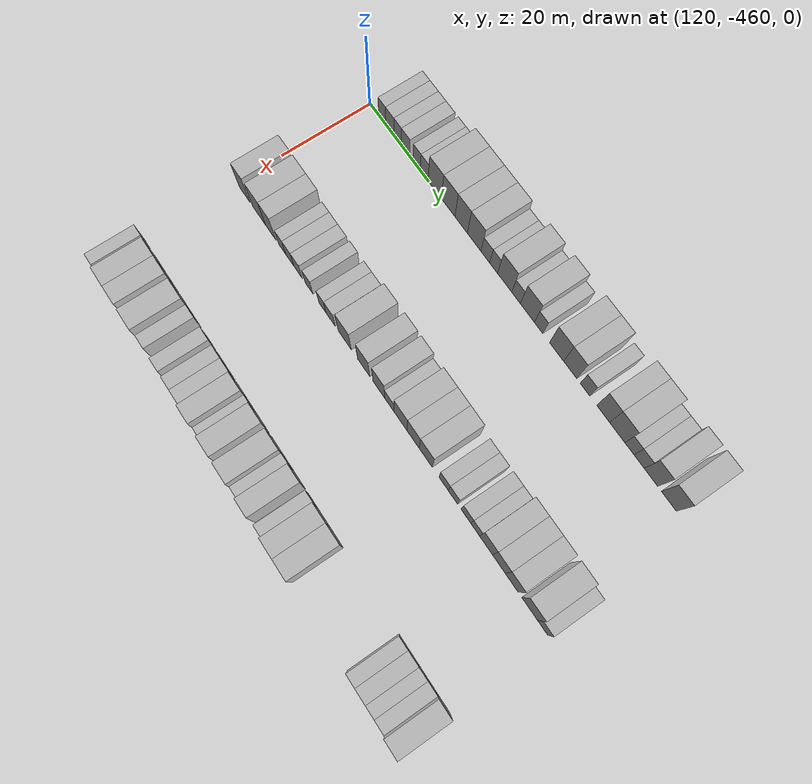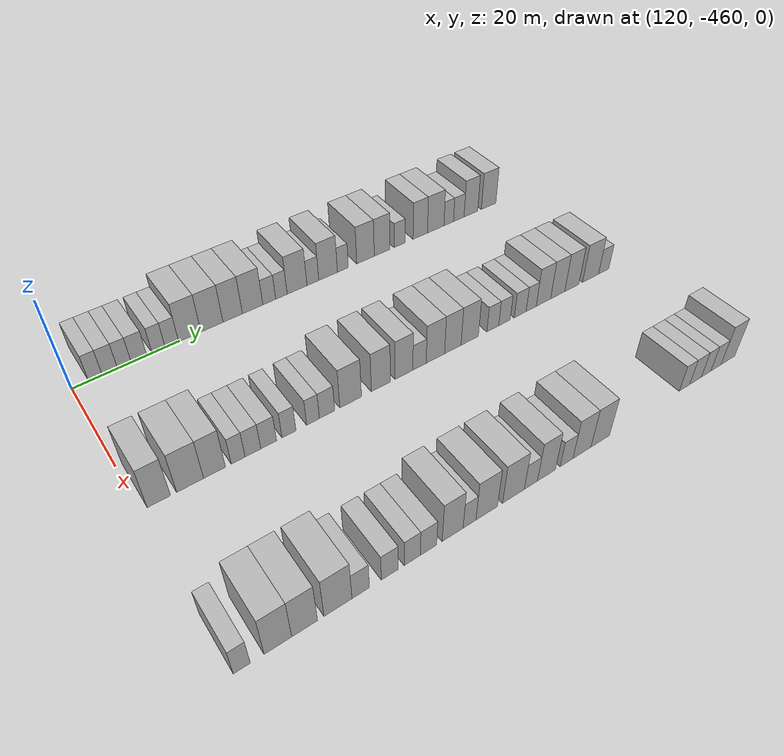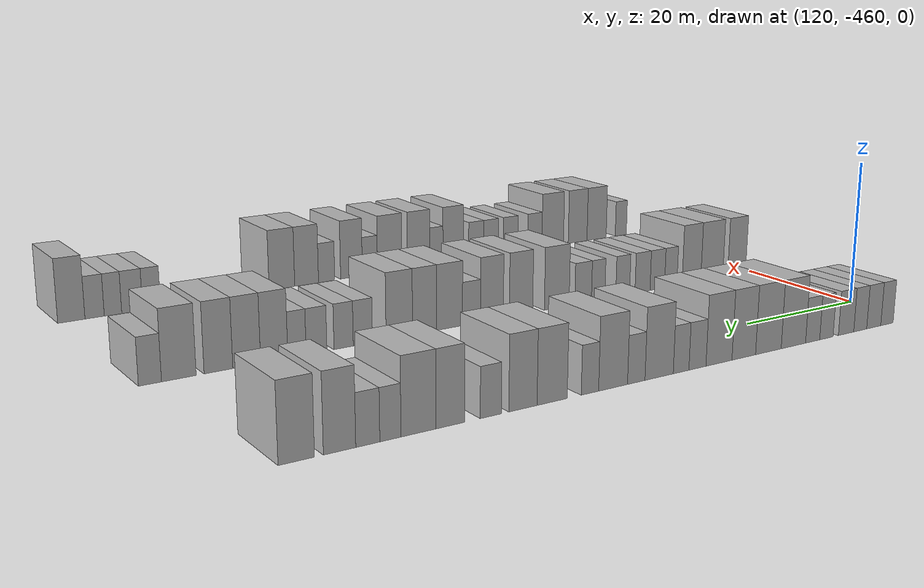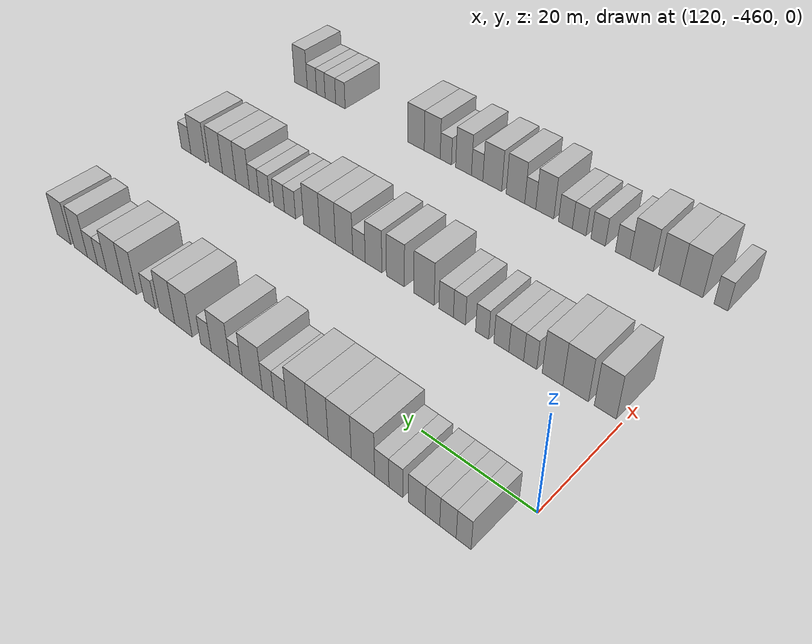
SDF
<sdf version="1.6">
 <world name="default">
  <model name="building_701">
   <static>1</static>
   <pose>115.0000 -455.7994 0 0.000000 0.000000 0.000000</pose>
   <link name="link">
    <pose>0 0 3.00 0 0 0</pose>
    <collision name="collision"><geometry><box><size>10.0000 2.4481 6.0000</size></box></geometry></collision>
    <visual name="visual">
     <cast_shadows>0</cast_shadows>
     <geometry><box><size>10.0000 2.4481 6.0000</size></box></geometry>
     <material>
      <script>
       <uri>model://HANNAS_wall/materials/scripts</uri>
       <uri>model://HANNAS_wall/materials/textures</uri>
       <name>vrc/HANNAS_wall</name>
      </script>
     </material>
    </visual>
   </link>
  </model>
  <model name="building_702">
   <static>1</static>
   <pose>115.0000 -453.1997 0 0.000000 0.000000 0.000000</pose>
   <link name="link">
    <pose>0 0 3.00 0 0 0</pose>
    <collision name="collision"><geometry><box><size>10.0000 2.7514 6.0000</size></box></geometry></collision>
    <visual name="visual">
     <cast_shadows>0</cast_shadows>
     <geometry><box><size>10.0000 2.7514 6.0000</size></box></geometry>
     <material>
      <script>
       <uri>model://HANNAS_wall/materials/scripts</uri>
       <uri>model://HANNAS_wall/materials/textures</uri>
       <name>vrc/HANNAS_wall</name>
      </script>
     </material>
    </visual>
   </link>
  </model>
  <model name="building_703">
   <static>1</static>
   <pose>115.0000 -450.5756 0 0.000000 0.000000 0.000000</pose>
   <link name="link">
    <pose>0 0 3.00 0 0 0</pose>
    <collision name="collision"><geometry><box><size>10.0000 2.4968 6.0000</size></box></geometry></collision>
    <visual name="visual">
     <cast_shadows>0</cast_shadows>
     <geometry><box><size>10.0000 2.4968 6.0000</size></box></geometry>
     <material>
      <script>
       <uri>model://HANNAS_wall/materials/scripts</uri>
       <uri>model://HANNAS_wall/materials/textures</uri>
       <name>vrc/HANNAS_wall</name>
      </script>
     </material>
    </visual>
   </link>
  </model>
  <model name="building_704">
   <static>1</static>
   <pose>115.0000 -447.8715 0 0.000000 0.000000 0.000000</pose>
   <link name="link">
    <pose>0 0 3.00 0 0 0</pose>
    <collision name="collision"><geometry><box><size>10.0000 2.9114 6.0000</size></box></geometry></collision>
    <visual name="visual">
     <cast_shadows>0</cast_shadows>
     <geometry><box><size>10.0000 2.9114 6.0000</size></box></geometry>
     <material>
      <script>
       <uri>model://HANNAS_wall/materials/scripts</uri>
       <uri>model://HANNAS_wall/materials/textures</uri>
       <name>vrc/HANNAS_wall</name>
      </script>
     </material>
    </visual>
   </link>
  </model>
  <model name="building_705">
   <static>1</static>
   <pose>115.0000 -444.1777 0 0.000000 0.000000 0.000000</pose>
   <link name="link">
    <pose>0 0 3.00 0 0 0</pose>
    <collision name="collision"><geometry><box><size>10.0000 2.4763 6.0000</size></box></geometry></collision>
    <visual name="visual">
     <cast_shadows>0</cast_shadows>
     <geometry><box><size>10.0000 2.4763 6.0000</size></box></geometry>
     <material>
      <script>
       <uri>model://HANNAS_wall/materials/scripts</uri>
       <uri>model://HANNAS_wall/materials/textures</uri>
       <name>vrc/HANNAS_wall</name>
      </script>
     </material>
    </visual>
   </link>
  </model>
  <model name="building_706">
   <static>1</static>
   <pose>115.0000 -441.6479 0 0.000000 0.000000 0.000000</pose>
   <link name="link">
    <pose>0 0 3.00 0 0 0</pose>
    <collision name="collision"><geometry><box><size>10.0000 2.5831 6.0000</size></box></geometry></collision>
    <visual name="visual">
     <cast_shadows>0</cast_shadows>
     <geometry><box><size>10.0000 2.5831 6.0000</size></box></geometry>
     <material>
      <script>
       <uri>model://HANNAS_wall/materials/scripts</uri>
       <uri>model://HANNAS_wall/materials/textures</uri>
       <name>vrc/HANNAS_wall</name>
      </script>
     </material>
    </visual>
   </link>
  </model>
  <model name="building_707">
   <static>1</static>
   <pose>115.0000 -438.1737 0 0.000000 0.000000 0.000000</pose>
   <link name="link">
    <pose>0 0 4.50 0 0 0</pose>
    <collision name="collision"><geometry><box><size>10.0000 4.3654 9.0000</size></box></geometry></collision>
    <visual name="visual">
     <cast_shadows>0</cast_shadows>
     <geometry><box><size>10.0000 4.3654 9.0000</size></box></geometry>
     <material>
      <script>
       <uri>model://HANNAS_wall/materials/scripts</uri>
       <uri>model://HANNAS_wall/materials/textures</uri>
       <name>vrc/HANNAS_wall</name>
      </script>
     </material>
    </visual>
   </link>
  </model>
  <model name="building_708">
   <static>1</static>
   <pose>115.0000 -433.7610 0 0.000000 0.000000 0.000000</pose>
   <link name="link">
    <pose>0 0 4.50 0 0 0</pose>
    <collision name="collision"><geometry><box><size>10.0000 4.4599 9.0000</size></box></geometry></collision>
    <visual name="visual">
     <cast_shadows>0</cast_shadows>
     <geometry><box><size>10.0000 4.4599 9.0000</size></box></geometry>
     <material>
      <script>
       <uri>model://HANNAS_wall/materials/scripts</uri>
       <uri>model://HANNAS_wall/materials/textures</uri>
       <name>vrc/HANNAS_wall</name>
      </script>
     </material>
    </visual>
   </link>
  </model>
  <model name="building_709">
   <static>1</static>
   <pose>115.0000 -429.5293 0 0.000000 0.000000 0.000000</pose>
   <link name="link">
    <pose>0 0 4.50 0 0 0</pose>
    <collision name="collision"><geometry><box><size>10.0000 4.0035 9.0000</size></box></geometry></collision>
    <visual name="visual">
     <cast_shadows>0</cast_shadows>
     <geometry><box><size>10.0000 4.0035 9.0000</size></box></geometry>
     <material>
      <script>
       <uri>model://HANNAS_wall/materials/scripts</uri>
       <uri>model://HANNAS_wall/materials/textures</uri>
       <name>vrc/HANNAS_wall</name>
      </script>
     </material>
    </visual>
   </link>
  </model>
  <model name="building_710">
   <static>1</static>
   <pose>115.0000 -425.3790 0 0.000000 0.000000 0.000000</pose>
   <link name="link">
    <pose>0 0 4.50 0 0 0</pose>
    <collision name="collision"><geometry><box><size>10.0000 4.2970 9.0000</size></box></geometry></collision>
    <visual name="visual">
     <cast_shadows>0</cast_shadows>
     <geometry><box><size>10.0000 4.2970 9.0000</size></box></geometry>
     <material>
      <script>
       <uri>model://HANNAS_wall/materials/scripts</uri>
       <uri>model://HANNAS_wall/materials/textures</uri>
       <name>vrc/HANNAS_wall</name>
      </script>
     </material>
    </visual>
   </link>
  </model>
  <model name="building_711">
   <static>1</static>
   <pose>115.0000 -421.8561 0 0.000000 0.000000 0.000000</pose>
   <link name="link">
    <pose>0 0 3.00 0 0 0</pose>
    <collision name="collision"><geometry><box><size>10.0000 2.7490 6.0000</size></box></geometry></collision>
    <visual name="visual">
     <cast_shadows>0</cast_shadows>
     <geometry><box><size>10.0000 2.7490 6.0000</size></box></geometry>
     <material>
      <script>
       <uri>model://HANNAS_wall/materials/scripts</uri>
       <uri>model://HANNAS_wall/materials/textures</uri>
       <name>vrc/HANNAS_wall</name>
      </script>
     </material>
    </visual>
   </link>
  </model>
  <model name="building_712">
   <static>1</static>
   <pose>115.0000 -419.2378 0 0.000000 0.000000 0.000000</pose>
   <link name="link">
    <pose>0 0 3.00 0 0 0</pose>
    <collision name="collision"><geometry><box><size>10.0000 2.4877 6.0000</size></box></geometry></collision>
    <visual name="visual">
     <cast_shadows>0</cast_shadows>
     <geometry><box><size>10.0000 2.4877 6.0000</size></box></geometry>
     <material>
      <script>
       <uri>model://HANNAS_wall/materials/scripts</uri>
       <uri>model://HANNAS_wall/materials/textures</uri>
       <name>vrc/HANNAS_wall</name>
      </script>
     </material>
    </visual>
   </link>
  </model>
  <model name="building_713">
   <static>1</static>
   <pose>115.0000 -415.7967 0 0.000000 0.000000 0.000000</pose>
   <link name="link">
    <pose>0 0 4.50 0 0 0</pose>
    <collision name="collision"><geometry><box><size>10.0000 4.3943 9.0000</size></box></geometry></collision>
    <visual name="visual">
     <cast_shadows>0</cast_shadows>
     <geometry><box><size>10.0000 4.3943 9.0000</size></box></geometry>
     <material>
      <script>
       <uri>model://HANNAS_wall/materials/scripts</uri>
       <uri>model://HANNAS_wall/materials/textures</uri>
       <name>vrc/HANNAS_wall</name>
      </script>
     </material>
    </visual>
   </link>
  </model>
  <model name="building_714">
   <static>1</static>
   <pose>115.0000 -412.2757 0 0.000000 0.000000 0.000000</pose>
   <link name="link">
    <pose>0 0 3.00 0 0 0</pose>
    <collision name="collision"><geometry><box><size>10.0000 2.6478 6.0000</size></box></geometry></collision>
    <visual name="visual">
     <cast_shadows>0</cast_shadows>
     <geometry><box><size>10.0000 2.6478 6.0000</size></box></geometry>
     <material>
      <script>
       <uri>model://HANNAS_wall/materials/scripts</uri>
       <uri>model://HANNAS_wall/materials/textures</uri>
       <name>vrc/HANNAS_wall</name>
      </script>
     </material>
    </visual>
   </link>
  </model>
  <model name="building_715">
   <static>1</static>
   <pose>115.0000 -408.8101 0 0.000000 0.000000 0.000000</pose>
   <link name="link">
    <pose>0 0 4.50 0 0 0</pose>
    <collision name="collision"><geometry><box><size>10.0000 4.2834 9.0000</size></box></geometry></collision>
    <visual name="visual">
     <cast_shadows>0</cast_shadows>
     <geometry><box><size>10.0000 4.2834 9.0000</size></box></geometry>
     <material>
      <script>
       <uri>model://HANNAS_wall/materials/scripts</uri>
       <uri>model://HANNAS_wall/materials/textures</uri>
       <name>vrc/HANNAS_wall</name>
      </script>
     </material>
    </visual>
   </link>
  </model>
  <model name="building_716">
   <static>1</static>
   <pose>115.0000 -405.4083 0 0.000000 0.000000 0.000000</pose>
   <link name="link">
    <pose>0 0 3.00 0 0 0</pose>
    <collision name="collision"><geometry><box><size>10.0000 2.5202 6.0000</size></box></geometry></collision>
    <visual name="visual">
     <cast_shadows>0</cast_shadows>
     <geometry><box><size>10.0000 2.5202 6.0000</size></box></geometry>
     <material>
      <script>
       <uri>model://HANNAS_wall/materials/scripts</uri>
       <uri>model://HANNAS_wall/materials/textures</uri>
       <name>vrc/HANNAS_wall</name>
      </script>
     </material>
    </visual>
   </link>
  </model>
  <model name="building_717">
   <static>1</static>
   <pose>115.0000 -400.0449 0 0.000000 0.000000 0.000000</pose>
   <link name="link">
    <pose>0 0 4.50 0 0 0</pose>
    <collision name="collision"><geometry><box><size>10.0000 4.2067 9.0000</size></box></geometry></collision>
    <visual name="visual">
     <cast_shadows>0</cast_shadows>
     <geometry><box><size>10.0000 4.2067 9.0000</size></box></geometry>
     <material>
      <script>
       <uri>model://HANNAS_wall/materials/scripts</uri>
       <uri>model://HANNAS_wall/materials/textures</uri>
       <name>vrc/HANNAS_wall</name>
      </script>
     </material>
    </visual>
   </link>
  </model>
  <model name="building_718">
   <static>1</static>
   <pose>115.0000 -396.0235 0 0.000000 0.000000 0.000000</pose>
   <link name="link">
    <pose>0 0 4.50 0 0 0</pose>
    <collision name="collision"><geometry><box><size>10.0000 3.8360 9.0000</size></box></geometry></collision>
    <visual name="visual">
     <cast_shadows>0</cast_shadows>
     <geometry><box><size>10.0000 3.8360 9.0000</size></box></geometry>
     <material>
      <script>
       <uri>model://HANNAS_wall/materials/scripts</uri>
       <uri>model://HANNAS_wall/materials/textures</uri>
       <name>vrc/HANNAS_wall</name>
      </script>
     </material>
    </visual>
   </link>
  </model>
  <model name="building_719">
   <static>1</static>
   <pose>115.0000 -391.7155 0 0.000000 0.000000 0.000000</pose>
   <link name="link">
    <pose>0 0 3.00 0 0 0</pose>
    <collision name="collision"><geometry><box><size>10.0000 2.7800 6.0000</size></box></geometry></collision>
    <visual name="visual">
     <cast_shadows>0</cast_shadows>
     <geometry><box><size>10.0000 2.7800 6.0000</size></box></geometry>
     <material>
      <script>
       <uri>model://HANNAS_wall/materials/scripts</uri>
       <uri>model://HANNAS_wall/materials/textures</uri>
       <name>vrc/HANNAS_wall</name>
      </script>
     </material>
    </visual>
   </link>
  </model>
  <model name="building_720">
   <static>1</static>
   <pose>115.0000 -386.4921 0 0.000000 0.000000 0.000000</pose>
   <link name="link">
    <pose>0 0 4.50 0 0 0</pose>
    <collision name="collision"><geometry><box><size>10.0000 3.6669 9.0000</size></box></geometry></collision>
    <visual name="visual">
     <cast_shadows>0</cast_shadows>
     <geometry><box><size>10.0000 3.6669 9.0000</size></box></geometry>
     <material>
      <script>
       <uri>model://HANNAS_wall/materials/scripts</uri>
       <uri>model://HANNAS_wall/materials/textures</uri>
       <name>vrc/HANNAS_wall</name>
      </script>
     </material>
    </visual>
   </link>
  </model>
  <model name="building_721">
   <static>1</static>
   <pose>115.0000 -382.5083 0 0.000000 0.000000 0.000000</pose>
   <link name="link">
    <pose>0 0 4.50 0 0 0</pose>
    <collision name="collision"><geometry><box><size>10.0000 4.3006 9.0000</size></box></geometry></collision>
    <visual name="visual">
     <cast_shadows>0</cast_shadows>
     <geometry><box><size>10.0000 4.3006 9.0000</size></box></geometry>
     <material>
      <script>
       <uri>model://HANNAS_wall/materials/scripts</uri>
       <uri>model://HANNAS_wall/materials/textures</uri>
       <name>vrc/HANNAS_wall</name>
      </script>
     </material>
    </visual>
   </link>
  </model>
  <model name="building_722">
   <static>1</static>
   <pose>115.0000 -379.0848 0 0.000000 0.000000 0.000000</pose>
   <link name="link">
    <pose>0 0 3.00 0 0 0</pose>
    <collision name="collision"><geometry><box><size>10.0000 2.5464 6.0000</size></box></geometry></collision>
    <visual name="visual">
     <cast_shadows>0</cast_shadows>
     <geometry><box><size>10.0000 2.5464 6.0000</size></box></geometry>
     <material>
      <script>
       <uri>model://HANNAS_wall/materials/scripts</uri>
       <uri>model://HANNAS_wall/materials/textures</uri>
       <name>vrc/HANNAS_wall</name>
      </script>
     </material>
    </visual>
   </link>
  </model>
  <model name="building_723">
   <static>1</static>
   <pose>115.0000 -376.3948 0 0.000000 0.000000 0.000000</pose>
   <link name="link">
    <pose>0 0 3.00 0 0 0</pose>
    <collision name="collision"><geometry><box><size>10.0000 2.8336 6.0000</size></box></geometry></collision>
    <visual name="visual">
     <cast_shadows>0</cast_shadows>
     <geometry><box><size>10.0000 2.8336 6.0000</size></box></geometry>
     <material>
      <script>
       <uri>model://HANNAS_wall/materials/scripts</uri>
       <uri>model://HANNAS_wall/materials/textures</uri>
       <name>vrc/HANNAS_wall</name>
      </script>
     </material>
    </visual>
   </link>
  </model>
  <model name="building_724">
   <static>1</static>
   <pose>115.0000 -373.1163 0 0.000000 0.000000 0.000000</pose>
   <link name="link">
    <pose>0 0 4.50 0 0 0</pose>
    <collision name="collision"><geometry><box><size>10.0000 3.7236 9.0000</size></box></geometry></collision>
    <visual name="visual">
     <cast_shadows>0</cast_shadows>
     <geometry><box><size>10.0000 3.7236 9.0000</size></box></geometry>
     <material>
      <script>
       <uri>model://HANNAS_wall/materials/scripts</uri>
       <uri>model://HANNAS_wall/materials/textures</uri>
       <name>vrc/HANNAS_wall</name>
      </script>
     </material>
    </visual>
   </link>
  </model>
  <model name="building_725">
   <static>1</static>
   <pose>115.0000 -368.2341 0 0.000000 0.000000 0.000000</pose>
   <link name="link">
    <pose>0 0 4.50 0 0 0</pose>
    <collision name="collision"><geometry><box><size>10.0000 4.0409 9.0000</size></box></geometry></collision>
    <visual name="visual">
     <cast_shadows>0</cast_shadows>
     <geometry><box><size>10.0000 4.0409 9.0000</size></box></geometry>
     <material>
      <script>
       <uri>model://HANNAS_wall/materials/scripts</uri>
       <uri>model://HANNAS_wall/materials/textures</uri>
       <name>vrc/HANNAS_wall</name>
      </script>
     </material>
    </visual>
   </link>
  </model>
  <model name="building_911">
   <static>1</static>
   <pose>145.0000 -457.1310 0 0.000000 0.000000 0.000000</pose>
   <link name="link">
    <pose>0 0 4.50 0 0 0</pose>
    <collision name="collision"><geometry><box><size>10.0000 3.7379 9.0000</size></box></geometry></collision>
    <visual name="visual">
     <cast_shadows>0</cast_shadows>
     <geometry><box><size>10.0000 3.7379 9.0000</size></box></geometry>
     <material>
      <script>
       <uri>model://HANNAS_wall/materials/scripts</uri>
       <uri>model://HANNAS_wall/materials/textures</uri>
       <name>vrc/HANNAS_wall</name>
      </script>
     </material>
    </visual>
   </link>
  </model>
  <model name="building_912">
   <static>1</static>
   <pose>145.0000 -452.0260 0 0.000000 0.000000 0.000000</pose>
   <link name="link">
    <pose>0 0 4.50 0 0 0</pose>
    <collision name="collision"><geometry><box><size>10.0000 4.4721 9.0000</size></box></geometry></collision>
    <visual name="visual">
     <cast_shadows>0</cast_shadows>
     <geometry><box><size>10.0000 4.4721 9.0000</size></box></geometry>
     <material>
      <script>
       <uri>model://HANNAS_wall/materials/scripts</uri>
       <uri>model://HANNAS_wall/materials/textures</uri>
       <name>vrc/HANNAS_wall</name>
      </script>
     </material>
    </visual>
   </link>
  </model>
  <model name="building_913">
   <static>1</static>
   <pose>145.0000 -447.9249 0 0.000000 0.000000 0.000000</pose>
   <link name="link">
    <pose>0 0 4.50 0 0 0</pose>
    <collision name="collision"><geometry><box><size>10.0000 3.7303 9.0000</size></box></geometry></collision>
    <visual name="visual">
     <cast_shadows>0</cast_shadows>
     <geometry><box><size>10.0000 3.7303 9.0000</size></box></geometry>
     <material>
      <script>
       <uri>model://HANNAS_wall/materials/scripts</uri>
       <uri>model://HANNAS_wall/materials/textures</uri>
       <name>vrc/HANNAS_wall</name>
      </script>
     </material>
    </visual>
   </link>
  </model>
  <model name="building_914">
   <static>1</static>
   <pose>145.0000 -443.8498 0 0.000000 0.000000 0.000000</pose>
   <link name="link">
    <pose>0 0 3.00 0 0 0</pose>
    <collision name="collision"><geometry><box><size>10.0000 2.4199 6.0000</size></box></geometry></collision>
    <visual name="visual">
     <cast_shadows>0</cast_shadows>
     <geometry><box><size>10.0000 2.4199 6.0000</size></box></geometry>
     <material>
      <script>
       <uri>model://HANNAS_wall/materials/scripts</uri>
       <uri>model://HANNAS_wall/materials/textures</uri>
       <name>vrc/HANNAS_wall</name>
      </script>
     </material>
    </visual>
   </link>
  </model>
  <model name="building_915">
   <static>1</static>
   <pose>145.0000 -441.2472 0 0.000000 0.000000 0.000000</pose>
   <link name="link">
    <pose>0 0 3.00 0 0 0</pose>
    <collision name="collision"><geometry><box><size>10.0000 2.7854 6.0000</size></box></geometry></collision>
    <visual name="visual">
     <cast_shadows>0</cast_shadows>
     <geometry><box><size>10.0000 2.7854 6.0000</size></box></geometry>
     <material>
      <script>
       <uri>model://HANNAS_wall/materials/scripts</uri>
       <uri>model://HANNAS_wall/materials/textures</uri>
       <name>vrc/HANNAS_wall</name>
      </script>
     </material>
    </visual>
   </link>
  </model>
  <model name="building_916">
   <static>1</static>
   <pose>145.0000 -438.4253 0 0.000000 0.000000 0.000000</pose>
   <link name="link">
    <pose>0 0 3.00 0 0 0</pose>
    <collision name="collision"><geometry><box><size>10.0000 2.8582 6.0000</size></box></geometry></collision>
    <visual name="visual">
     <cast_shadows>0</cast_shadows>
     <geometry><box><size>10.0000 2.8582 6.0000</size></box></geometry>
     <material>
      <script>
       <uri>model://HANNAS_wall/materials/scripts</uri>
       <uri>model://HANNAS_wall/materials/textures</uri>
       <name>vrc/HANNAS_wall</name>
      </script>
     </material>
    </visual>
   </link>
  </model>
  <model name="building_917">
   <static>1</static>
   <pose>145.0000 -434.7051 0 0.000000 0.000000 0.000000</pose>
   <link name="link">
    <pose>0 0 3.00 0 0 0</pose>
    <collision name="collision"><geometry><box><size>10.0000 2.5822 6.0000</size></box></geometry></collision>
    <visual name="visual">
     <cast_shadows>0</cast_shadows>
     <geometry><box><size>10.0000 2.5822 6.0000</size></box></geometry>
     <material>
      <script>
       <uri>model://HANNAS_wall/materials/scripts</uri>
       <uri>model://HANNAS_wall/materials/textures</uri>
       <name>vrc/HANNAS_wall</name>
      </script>
     </material>
    </visual>
   </link>
  </model>
  <model name="building_918">
   <static>1</static>
   <pose>145.0000 -430.2019 0 0.000000 0.000000 0.000000</pose>
   <link name="link">
    <pose>0 0 3.00 0 0 0</pose>
    <collision name="collision"><geometry><box><size>10.0000 2.4242 6.0000</size></box></geometry></collision>
    <visual name="visual">
     <cast_shadows>0</cast_shadows>
     <geometry><box><size>10.0000 2.4242 6.0000</size></box></geometry>
     <material>
      <script>
       <uri>model://HANNAS_wall/materials/scripts</uri>
       <uri>model://HANNAS_wall/materials/textures</uri>
       <name>vrc/HANNAS_wall</name>
      </script>
     </material>
    </visual>
   </link>
  </model>
  <model name="building_919">
   <static>1</static>
   <pose>145.0000 -427.5047 0 0.000000 0.000000 0.000000</pose>
   <link name="link">
    <pose>0 0 3.00 0 0 0</pose>
    <collision name="collision"><geometry><box><size>10.0000 2.9701 6.0000</size></box></geometry></collision>
    <visual name="visual">
     <cast_shadows>0</cast_shadows>
     <geometry><box><size>10.0000 2.9701 6.0000</size></box></geometry>
     <material>
      <script>
       <uri>model://HANNAS_wall/materials/scripts</uri>
       <uri>model://HANNAS_wall/materials/textures</uri>
       <name>vrc/HANNAS_wall</name>
      </script>
     </material>
    </visual>
   </link>
  </model>
  <model name="building_920">
   <static>1</static>
   <pose>145.0000 -422.8706 0 0.000000 0.000000 0.000000</pose>
   <link name="link">
    <pose>0 0 4.50 0 0 0</pose>
    <collision name="collision"><geometry><box><size>10.0000 4.2980 9.0000</size></box></geometry></collision>
    <visual name="visual">
     <cast_shadows>0</cast_shadows>
     <geometry><box><size>10.0000 4.2980 9.0000</size></box></geometry>
     <material>
      <script>
       <uri>model://HANNAS_wall/materials/scripts</uri>
       <uri>model://HANNAS_wall/materials/textures</uri>
       <name>vrc/HANNAS_wall</name>
      </script>
     </material>
    </visual>
   </link>
  </model>
  <model name="building_921">
   <static>1</static>
   <pose>145.0000 -416.7635 0 0.000000 0.000000 0.000000</pose>
   <link name="link">
    <pose>0 0 4.50 0 0 0</pose>
    <collision name="collision"><geometry><box><size>10.0000 3.9163 9.0000</size></box></geometry></collision>
    <visual name="visual">
     <cast_shadows>0</cast_shadows>
     <geometry><box><size>10.0000 3.9163 9.0000</size></box></geometry>
     <material>
      <script>
       <uri>model://HANNAS_wall/materials/scripts</uri>
       <uri>model://HANNAS_wall/materials/textures</uri>
       <name>vrc/HANNAS_wall</name>
      </script>
     </material>
    </visual>
   </link>
  </model>
  <model name="building_922">
   <static>1</static>
   <pose>145.0000 -411.9333 0 0.000000 0.000000 0.000000</pose>
   <link name="link">
    <pose>0 0 4.50 0 0 0</pose>
    <collision name="collision"><geometry><box><size>10.0000 3.7440 9.0000</size></box></geometry></collision>
    <visual name="visual">
     <cast_shadows>0</cast_shadows>
     <geometry><box><size>10.0000 3.7440 9.0000</size></box></geometry>
     <material>
      <script>
       <uri>model://HANNAS_wall/materials/scripts</uri>
       <uri>model://HANNAS_wall/materials/textures</uri>
       <name>vrc/HANNAS_wall</name>
      </script>
     </material>
    </visual>
   </link>
  </model>
  <model name="building_923">
   <static>1</static>
   <pose>145.0000 -408.6240 0 0.000000 0.000000 0.000000</pose>
   <link name="link">
    <pose>0 0 3.00 0 0 0</pose>
    <collision name="collision"><geometry><box><size>10.0000 2.8745 6.0000</size></box></geometry></collision>
    <visual name="visual">
     <cast_shadows>0</cast_shadows>
     <geometry><box><size>10.0000 2.8745 6.0000</size></box></geometry>
     <material>
      <script>
       <uri>model://HANNAS_wall/materials/scripts</uri>
       <uri>model://HANNAS_wall/materials/textures</uri>
       <name>vrc/HANNAS_wall</name>
      </script>
     </material>
    </visual>
   </link>
  </model>
  <model name="building_924">
   <static>1</static>
   <pose>145.0000 -405.1600 0 0.000000 0.000000 0.000000</pose>
   <link name="link">
    <pose>0 0 4.50 0 0 0</pose>
    <collision name="collision"><geometry><box><size>10.0000 4.0536 9.0000</size></box></geometry></collision>
    <visual name="visual">
     <cast_shadows>0</cast_shadows>
     <geometry><box><size>10.0000 4.0536 9.0000</size></box></geometry>
     <material>
      <script>
       <uri>model://HANNAS_wall/materials/scripts</uri>
       <uri>model://HANNAS_wall/materials/textures</uri>
       <name>vrc/HANNAS_wall</name>
      </script>
     </material>
    </visual>
   </link>
  </model>
  <model name="building_925">
   <static>1</static>
   <pose>145.0000 -401.2759 0 0.000000 0.000000 0.000000</pose>
   <link name="link">
    <pose>0 0 4.50 0 0 0</pose>
    <collision name="collision"><geometry><box><size>10.0000 3.7147 9.0000</size></box></geometry></collision>
    <visual name="visual">
     <cast_shadows>0</cast_shadows>
     <geometry><box><size>10.0000 3.7147 9.0000</size></box></geometry>
     <material>
      <script>
       <uri>model://HANNAS_wall/materials/scripts</uri>
       <uri>model://HANNAS_wall/materials/textures</uri>
       <name>vrc/HANNAS_wall</name>
      </script>
     </material>
    </visual>
   </link>
  </model>
  <model name="building_926">
   <static>1</static>
   <pose>145.0000 -397.4266 0 0.000000 0.000000 0.000000</pose>
   <link name="link">
    <pose>0 0 4.50 0 0 0</pose>
    <collision name="collision"><geometry><box><size>10.0000 3.9840 9.0000</size></box></geometry></collision>
    <visual name="visual">
     <cast_shadows>0</cast_shadows>
     <geometry><box><size>10.0000 3.9840 9.0000</size></box></geometry>
     <material>
      <script>
       <uri>model://HANNAS_wall/materials/scripts</uri>
       <uri>model://HANNAS_wall/materials/textures</uri>
       <name>vrc/HANNAS_wall</name>
      </script>
     </material>
    </visual>
   </link>
  </model>
  <model name="building_927">
   <static>1</static>
   <pose>145.0000 -392.0383 0 0.000000 0.000000 0.000000</pose>
   <link name="link">
    <pose>0 0 3.00 0 0 0</pose>
    <collision name="collision"><geometry><box><size>10.0000 2.7925 6.0000</size></box></geometry></collision>
    <visual name="visual">
     <cast_shadows>0</cast_shadows>
     <geometry><box><size>10.0000 2.7925 6.0000</size></box></geometry>
     <material>
      <script>
       <uri>model://HANNAS_wall/materials/scripts</uri>
       <uri>model://HANNAS_wall/materials/textures</uri>
       <name>vrc/HANNAS_wall</name>
      </script>
     </material>
    </visual>
   </link>
  </model>
  <model name="building_928">
   <static>1</static>
   <pose>145.0000 -389.2608 0 0.000000 0.000000 0.000000</pose>
   <link name="link">
    <pose>0 0 3.00 0 0 0</pose>
    <collision name="collision"><geometry><box><size>10.0000 2.7626 6.0000</size></box></geometry></collision>
    <visual name="visual">
     <cast_shadows>0</cast_shadows>
     <geometry><box><size>10.0000 2.7626 6.0000</size></box></geometry>
     <material>
      <script>
       <uri>model://HANNAS_wall/materials/scripts</uri>
       <uri>model://HANNAS_wall/materials/textures</uri>
       <name>vrc/HANNAS_wall</name>
      </script>
     </material>
    </visual>
   </link>
  </model>
  <model name="building_929">
   <static>1</static>
   <pose>145.0000 -385.4283 0 0.000000 0.000000 0.000000</pose>
   <link name="link">
    <pose>0 0 3.00 0 0 0</pose>
    <collision name="collision"><geometry><box><size>10.0000 2.9024 6.0000</size></box></geometry></collision>
    <visual name="visual">
     <cast_shadows>0</cast_shadows>
     <geometry><box><size>10.0000 2.9024 6.0000</size></box></geometry>
     <material>
      <script>
       <uri>model://HANNAS_wall/materials/scripts</uri>
       <uri>model://HANNAS_wall/materials/textures</uri>
       <name>vrc/HANNAS_wall</name>
      </script>
     </material>
    </visual>
   </link>
  </model>
  <model name="building_930">
   <static>1</static>
   <pose>145.0000 -382.7212 0 0.000000 0.000000 0.000000</pose>
   <link name="link">
    <pose>0 0 3.00 0 0 0</pose>
    <collision name="collision"><geometry><box><size>10.0000 2.5119 6.0000</size></box></geometry></collision>
    <visual name="visual">
     <cast_shadows>0</cast_shadows>
     <geometry><box><size>10.0000 2.5119 6.0000</size></box></geometry>
     <material>
      <script>
       <uri>model://HANNAS_wall/materials/scripts</uri>
       <uri>model://HANNAS_wall/materials/textures</uri>
       <name>vrc/HANNAS_wall</name>
      </script>
     </material>
    </visual>
   </link>
  </model>
  <model name="building_931">
   <static>1</static>
   <pose>145.0000 -379.6344 0 0.000000 0.000000 0.000000</pose>
   <link name="link">
    <pose>0 0 4.50 0 0 0</pose>
    <collision name="collision"><geometry><box><size>10.0000 3.6617 9.0000</size></box></geometry></collision>
    <visual name="visual">
     <cast_shadows>0</cast_shadows>
     <geometry><box><size>10.0000 3.6617 9.0000</size></box></geometry>
     <material>
      <script>
       <uri>model://HANNAS_wall/materials/scripts</uri>
       <uri>model://HANNAS_wall/materials/textures</uri>
       <name>vrc/HANNAS_wall</name>
      </script>
     </material>
    </visual>
   </link>
  </model>
  <model name="building_932">
   <static>1</static>
   <pose>145.0000 -375.9734 0 0.000000 0.000000 0.000000</pose>
   <link name="link">
    <pose>0 0 4.50 0 0 0</pose>
    <collision name="collision"><geometry><box><size>10.0000 3.6602 9.0000</size></box></geometry></collision>
    <visual name="visual">
     <cast_shadows>0</cast_shadows>
     <geometry><box><size>10.0000 3.6602 9.0000</size></box></geometry>
     <material>
      <script>
       <uri>model://HANNAS_wall/materials/scripts</uri>
       <uri>model://HANNAS_wall/materials/textures</uri>
       <name>vrc/HANNAS_wall</name>
      </script>
     </material>
    </visual>
   </link>
  </model>
  <model name="building_933">
   <static>1</static>
   <pose>145.0000 -372.2948 0 0.000000 0.000000 0.000000</pose>
   <link name="link">
    <pose>0 0 4.50 0 0 0</pose>
    <collision name="collision"><geometry><box><size>10.0000 3.6971 9.0000</size></box></geometry></collision>
    <visual name="visual">
     <cast_shadows>0</cast_shadows>
     <geometry><box><size>10.0000 3.6971 9.0000</size></box></geometry>
     <material>
      <script>
       <uri>model://HANNAS_wall/materials/scripts</uri>
       <uri>model://HANNAS_wall/materials/textures</uri>
       <name>vrc/HANNAS_wall</name>
      </script>
     </material>
    </visual>
   </link>
  </model>
  <model name="building_934">
   <static>1</static>
   <pose>145.0000 -367.2906 0 0.000000 0.000000 0.000000</pose>
   <link name="link">
    <pose>0 0 4.50 0 0 0</pose>
    <collision name="collision"><geometry><box><size>10.0000 4.3112 9.0000</size></box></geometry></collision>
    <visual name="visual">
     <cast_shadows>0</cast_shadows>
     <geometry><box><size>10.0000 4.3112 9.0000</size></box></geometry>
     <material>
      <script>
       <uri>model://HANNAS_wall/materials/scripts</uri>
       <uri>model://HANNAS_wall/materials/textures</uri>
       <name>vrc/HANNAS_wall</name>
      </script>
     </material>
    </visual>
   </link>
  </model>
  <model name="building_935">
   <static>1</static>
   <pose>145.0000 -363.7276 0 0.000000 0.000000 0.000000</pose>
   <link name="link">
    <pose>0 0 3.00 0 0 0</pose>
    <collision name="collision"><geometry><box><size>10.0000 2.8149 6.0000</size></box></geometry></collision>
    <visual name="visual">
     <cast_shadows>0</cast_shadows>
     <geometry><box><size>10.0000 2.8149 6.0000</size></box></geometry>
     <material>
      <script>
       <uri>model://HANNAS_wall/materials/scripts</uri>
       <uri>model://HANNAS_wall/materials/textures</uri>
       <name>vrc/HANNAS_wall</name>
      </script>
     </material>
    </visual>
   </link>
  </model>
  <model name="building_1145">
   <static>1</static>
   <pose>175.0000 -458.7758 0 0.000000 0.000000 0.000000</pose>
   <link name="link">
    <pose>0 0 3.00 0 0 0</pose>
    <collision name="collision"><geometry><box><size>10.0000 2.4485 6.0000</size></box></geometry></collision>
    <visual name="visual">
     <cast_shadows>0</cast_shadows>
     <geometry><box><size>10.0000 2.4485 6.0000</size></box></geometry>
     <material>
      <script>
       <uri>model://HANNAS_wall/materials/scripts</uri>
       <uri>model://HANNAS_wall/materials/textures</uri>
       <name>vrc/HANNAS_wall</name>
      </script>
     </material>
    </visual>
   </link>
  </model>
  <model name="building_1146">
   <static>1</static>
   <pose>175.0000 -453.4857 0 0.000000 0.000000 0.000000</pose>
   <link name="link">
    <pose>0 0 4.50 0 0 0</pose>
    <collision name="collision"><geometry><box><size>10.0000 4.1317 9.0000</size></box></geometry></collision>
    <visual name="visual">
     <cast_shadows>0</cast_shadows>
     <geometry><box><size>10.0000 4.1317 9.0000</size></box></geometry>
     <material>
      <script>
       <uri>model://HANNAS_wall/materials/scripts</uri>
       <uri>model://HANNAS_wall/materials/textures</uri>
       <name>vrc/HANNAS_wall</name>
      </script>
     </material>
    </visual>
   </link>
  </model>
  <model name="building_1147">
   <static>1</static>
   <pose>175.0000 -449.4348 0 0.000000 0.000000 0.000000</pose>
   <link name="link">
    <pose>0 0 4.50 0 0 0</pose>
    <collision name="collision"><geometry><box><size>10.0000 3.9700 9.0000</size></box></geometry></collision>
    <visual name="visual">
     <cast_shadows>0</cast_shadows>
     <geometry><box><size>10.0000 3.9700 9.0000</size></box></geometry>
     <material>
      <script>
       <uri>model://HANNAS_wall/materials/scripts</uri>
       <uri>model://HANNAS_wall/materials/textures</uri>
       <name>vrc/HANNAS_wall</name>
      </script>
     </material>
    </visual>
   </link>
  </model>
  <model name="building_1148">
   <static>1</static>
   <pose>175.0000 -444.2152 0 0.000000 0.000000 0.000000</pose>
   <link name="link">
    <pose>0 0 4.50 0 0 0</pose>
    <collision name="collision"><geometry><box><size>10.0000 4.4693 9.0000</size></box></geometry></collision>
    <visual name="visual">
     <cast_shadows>0</cast_shadows>
     <geometry><box><size>10.0000 4.4693 9.0000</size></box></geometry>
     <material>
      <script>
       <uri>model://HANNAS_wall/materials/scripts</uri>
       <uri>model://HANNAS_wall/materials/textures</uri>
       <name>vrc/HANNAS_wall</name>
      </script>
     </material>
    </visual>
   </link>
  </model>
  <model name="building_1149">
   <static>1</static>
   <pose>175.0000 -440.5507 0 0.000000 0.000000 0.000000</pose>
   <link name="link">
    <pose>0 0 3.00 0 0 0</pose>
    <collision name="collision"><geometry><box><size>10.0000 2.8598 6.0000</size></box></geometry></collision>
    <visual name="visual">
     <cast_shadows>0</cast_shadows>
     <geometry><box><size>10.0000 2.8598 6.0000</size></box></geometry>
     <material>
      <script>
       <uri>model://HANNAS_wall/materials/scripts</uri>
       <uri>model://HANNAS_wall/materials/textures</uri>
       <name>vrc/HANNAS_wall</name>
      </script>
     </material>
    </visual>
   </link>
  </model>
  <model name="building_1150">
   <static>1</static>
   <pose>175.0000 -435.6728 0 0.000000 0.000000 0.000000</pose>
   <link name="link">
    <pose>0 0 3.00 0 0 0</pose>
    <collision name="collision"><geometry><box><size>10.0000 2.8960 6.0000</size></box></geometry></collision>
    <visual name="visual">
     <cast_shadows>0</cast_shadows>
     <geometry><box><size>10.0000 2.8960 6.0000</size></box></geometry>
     <material>
      <script>
       <uri>model://HANNAS_wall/materials/scripts</uri>
       <uri>model://HANNAS_wall/materials/textures</uri>
       <name>vrc/HANNAS_wall</name>
      </script>
     </material>
    </visual>
   </link>
  </model>
  <model name="building_1151">
   <static>1</static>
   <pose>175.0000 -431.8225 0 0.000000 0.000000 0.000000</pose>
   <link name="link">
    <pose>0 0 3.00 0 0 0</pose>
    <collision name="collision"><geometry><box><size>10.0000 2.8046 6.0000</size></box></geometry></collision>
    <visual name="visual">
     <cast_shadows>0</cast_shadows>
     <geometry><box><size>10.0000 2.8046 6.0000</size></box></geometry>
     <material>
      <script>
       <uri>model://HANNAS_wall/materials/scripts</uri>
       <uri>model://HANNAS_wall/materials/textures</uri>
       <name>vrc/HANNAS_wall</name>
      </script>
     </material>
    </visual>
   </link>
  </model>
  <model name="building_1152">
   <static>1</static>
   <pose>175.0000 -428.9631 0 0.000000 0.000000 0.000000</pose>
   <link name="link">
    <pose>0 0 3.00 0 0 0</pose>
    <collision name="collision"><geometry><box><size>10.0000 2.9142 6.0000</size></box></geometry></collision>
    <visual name="visual">
     <cast_shadows>0</cast_shadows>
     <geometry><box><size>10.0000 2.9142 6.0000</size></box></geometry>
     <material>
      <script>
       <uri>model://HANNAS_wall/materials/scripts</uri>
       <uri>model://HANNAS_wall/materials/textures</uri>
       <name>vrc/HANNAS_wall</name>
      </script>
     </material>
    </visual>
   </link>
  </model>
  <model name="building_1153">
   <static>1</static>
   <pose>175.0000 -424.5849 0 0.000000 0.000000 0.000000</pose>
   <link name="link">
    <pose>0 0 4.50 0 0 0</pose>
    <collision name="collision"><geometry><box><size>10.0000 3.8422 9.0000</size></box></geometry></collision>
    <visual name="visual">
     <cast_shadows>0</cast_shadows>
     <geometry><box><size>10.0000 3.8422 9.0000</size></box></geometry>
     <material>
      <script>
       <uri>model://HANNAS_wall/materials/scripts</uri>
       <uri>model://HANNAS_wall/materials/textures</uri>
       <name>vrc/HANNAS_wall</name>
      </script>
     </material>
    </visual>
   </link>
  </model>
  <model name="building_1154">
   <static>1</static>
   <pose>175.0000 -421.4592 0 0.000000 0.000000 0.000000</pose>
   <link name="link">
    <pose>0 0 3.00 0 0 0</pose>
    <collision name="collision"><geometry><box><size>10.0000 2.4094 6.0000</size></box></geometry></collision>
    <visual name="visual">
     <cast_shadows>0</cast_shadows>
     <geometry><box><size>10.0000 2.4094 6.0000</size></box></geometry>
     <material>
      <script>
       <uri>model://HANNAS_wall/materials/scripts</uri>
       <uri>model://HANNAS_wall/materials/textures</uri>
       <name>vrc/HANNAS_wall</name>
      </script>
     </material>
    </visual>
   </link>
  </model>
  <model name="building_1155">
   <static>1</static>
   <pose>175.0000 -418.1895 0 0.000000 0.000000 0.000000</pose>
   <link name="link">
    <pose>0 0 4.50 0 0 0</pose>
    <collision name="collision"><geometry><box><size>10.0000 4.1300 9.0000</size></box></geometry></collision>
    <visual name="visual">
     <cast_shadows>0</cast_shadows>
     <geometry><box><size>10.0000 4.1300 9.0000</size></box></geometry>
     <material>
      <script>
       <uri>model://HANNAS_wall/materials/scripts</uri>
       <uri>model://HANNAS_wall/materials/textures</uri>
       <name>vrc/HANNAS_wall</name>
      </script>
     </material>
    </visual>
   </link>
  </model>
  <model name="building_1156">
   <static>1</static>
   <pose>175.0000 -412.9633 0 0.000000 0.000000 0.000000</pose>
   <link name="link">
    <pose>0 0 4.50 0 0 0</pose>
    <collision name="collision"><geometry><box><size>10.0000 4.3225 9.0000</size></box></geometry></collision>
    <visual name="visual">
     <cast_shadows>0</cast_shadows>
     <geometry><box><size>10.0000 4.3225 9.0000</size></box></geometry>
     <material>
      <script>
       <uri>model://HANNAS_wall/materials/scripts</uri>
       <uri>model://HANNAS_wall/materials/textures</uri>
       <name>vrc/HANNAS_wall</name>
      </script>
     </material>
    </visual>
   </link>
  </model>
  <model name="building_1157">
   <static>1</static>
   <pose>175.0000 -409.4777 0 0.000000 0.000000 0.000000</pose>
   <link name="link">
    <pose>0 0 3.00 0 0 0</pose>
    <collision name="collision"><geometry><box><size>10.0000 2.6486 6.0000</size></box></geometry></collision>
    <visual name="visual">
     <cast_shadows>0</cast_shadows>
     <geometry><box><size>10.0000 2.6486 6.0000</size></box></geometry>
     <material>
      <script>
       <uri>model://HANNAS_wall/materials/scripts</uri>
       <uri>model://HANNAS_wall/materials/textures</uri>
       <name>vrc/HANNAS_wall</name>
      </script>
     </material>
    </visual>
   </link>
  </model>
  <model name="building_1158">
   <static>1</static>
   <pose>175.0000 -406.2838 0 0.000000 0.000000 0.000000</pose>
   <link name="link">
    <pose>0 0 4.50 0 0 0</pose>
    <collision name="collision"><geometry><box><size>10.0000 3.7392 9.0000</size></box></geometry></collision>
    <visual name="visual">
     <cast_shadows>0</cast_shadows>
     <geometry><box><size>10.0000 3.7392 9.0000</size></box></geometry>
     <material>
      <script>
       <uri>model://HANNAS_wall/materials/scripts</uri>
       <uri>model://HANNAS_wall/materials/textures</uri>
       <name>vrc/HANNAS_wall</name>
      </script>
     </material>
    </visual>
   </link>
  </model>
  <model name="building_1159">
   <static>1</static>
   <pose>175.0000 -402.0515 0 0.000000 0.000000 0.000000</pose>
   <link name="link">
    <pose>0 0 3.00 0 0 0</pose>
    <collision name="collision"><geometry><box><size>10.0000 2.7254 6.0000</size></box></geometry></collision>
    <visual name="visual">
     <cast_shadows>0</cast_shadows>
     <geometry><box><size>10.0000 2.7254 6.0000</size></box></geometry>
     <material>
      <script>
       <uri>model://HANNAS_wall/materials/scripts</uri>
       <uri>model://HANNAS_wall/materials/textures</uri>
       <name>vrc/HANNAS_wall</name>
      </script>
     </material>
    </visual>
   </link>
  </model>
  <model name="building_1160">
   <static>1</static>
   <pose>175.0000 -398.7252 0 0.000000 0.000000 0.000000</pose>
   <link name="link">
    <pose>0 0 4.50 0 0 0</pose>
    <collision name="collision"><geometry><box><size>10.0000 3.9272 9.0000</size></box></geometry></collision>
    <visual name="visual">
     <cast_shadows>0</cast_shadows>
     <geometry><box><size>10.0000 3.9272 9.0000</size></box></geometry>
     <material>
      <script>
       <uri>model://HANNAS_wall/materials/scripts</uri>
       <uri>model://HANNAS_wall/materials/textures</uri>
       <name>vrc/HANNAS_wall</name>
      </script>
     </material>
    </visual>
   </link>
  </model>
  <model name="building_1161">
   <static>1</static>
   <pose>175.0000 -394.6854 0 0.000000 0.000000 0.000000</pose>
   <link name="link">
    <pose>0 0 4.50 0 0 0</pose>
    <collision name="collision"><geometry><box><size>10.0000 4.1523 9.0000</size></box></geometry></collision>
    <visual name="visual">
     <cast_shadows>0</cast_shadows>
     <geometry><box><size>10.0000 4.1523 9.0000</size></box></geometry>
     <material>
      <script>
       <uri>model://HANNAS_wall/materials/scripts</uri>
       <uri>model://HANNAS_wall/materials/textures</uri>
       <name>vrc/HANNAS_wall</name>
      </script>
     </material>
    </visual>
   </link>
  </model>
  <model name="building_1162">
   <static>1</static>
   <pose>175.0000 -374.7009 0 0.000000 0.000000 0.000000</pose>
   <link name="link">
    <pose>0 0 3.00 0 0 0</pose>
    <collision name="collision"><geometry><box><size>10.0000 2.6056 6.0000</size></box></geometry></collision>
    <visual name="visual">
     <cast_shadows>0</cast_shadows>
     <geometry><box><size>10.0000 2.6056 6.0000</size></box></geometry>
     <material>
      <script>
       <uri>model://HANNAS_wall/materials/scripts</uri>
       <uri>model://HANNAS_wall/materials/textures</uri>
       <name>vrc/HANNAS_wall</name>
      </script>
     </material>
    </visual>
   </link>
  </model>
  <model name="building_1163">
   <static>1</static>
   <pose>175.0000 -371.9054 0 0.000000 0.000000 0.000000</pose>
   <link name="link">
    <pose>0 0 3.00 0 0 0</pose>
    <collision name="collision"><geometry><box><size>10.0000 2.9855 6.0000</size></box></geometry></collision>
    <visual name="visual">
     <cast_shadows>0</cast_shadows>
     <geometry><box><size>10.0000 2.9855 6.0000</size></box></geometry>
     <material>
      <script>
       <uri>model://HANNAS_wall/materials/scripts</uri>
       <uri>model://HANNAS_wall/materials/textures</uri>
       <name>vrc/HANNAS_wall</name>
      </script>
     </material>
    </visual>
   </link>
  </model>
  <model name="building_1164">
   <static>1</static>
   <pose>175.0000 -369.1848 0 0.000000 0.000000 0.000000</pose>
   <link name="link">
    <pose>0 0 3.00 0 0 0</pose>
    <collision name="collision"><geometry><box><size>10.0000 2.4556 6.0000</size></box></geometry></collision>
    <visual name="visual">
     <cast_shadows>0</cast_shadows>
     <geometry><box><size>10.0000 2.4556 6.0000</size></box></geometry>
     <material>
      <script>
       <uri>model://HANNAS_wall/materials/scripts</uri>
       <uri>model://HANNAS_wall/materials/textures</uri>
       <name>vrc/HANNAS_wall</name>
      </script>
     </material>
    </visual>
   </link>
  </model>
  <model name="building_1165">
   <static>1</static>
   <pose>175.0000 -366.6168 0 0.000000 0.000000 0.000000</pose>
   <link name="link">
    <pose>0 0 3.00 0 0 0</pose>
    <collision name="collision"><geometry><box><size>10.0000 2.6804 6.0000</size></box></geometry></collision>
    <visual name="visual">
     <cast_shadows>0</cast_shadows>
     <geometry><box><size>10.0000 2.6804 6.0000</size></box></geometry>
     <material>
      <script>
       <uri>model://HANNAS_wall/materials/scripts</uri>
       <uri>model://HANNAS_wall/materials/textures</uri>
       <name>vrc/HANNAS_wall</name>
      </script>
     </material>
    </visual>
   </link>
  </model>
  <model name="building_1166">
   <static>1</static>
   <pose>175.0000 -363.4172 0 0.000000 0.000000 0.000000</pose>
   <link name="link">
    <pose>0 0 4.50 0 0 0</pose>
    <collision name="collision"><geometry><box><size>10.0000 3.7187 9.0000</size></box></geometry></collision>
    <visual name="visual">
     <cast_shadows>0</cast_shadows>
     <geometry><box><size>10.0000 3.7187 9.0000</size></box></geometry>
     <material>
      <script>
       <uri>model://HANNAS_wall/materials/scripts</uri>
       <uri>model://HANNAS_wall/materials/textures</uri>
       <name>vrc/HANNAS_wall</name>
      </script>
     </material>
    </visual>
   </link>
  </model>
 </world>
</sdf>
